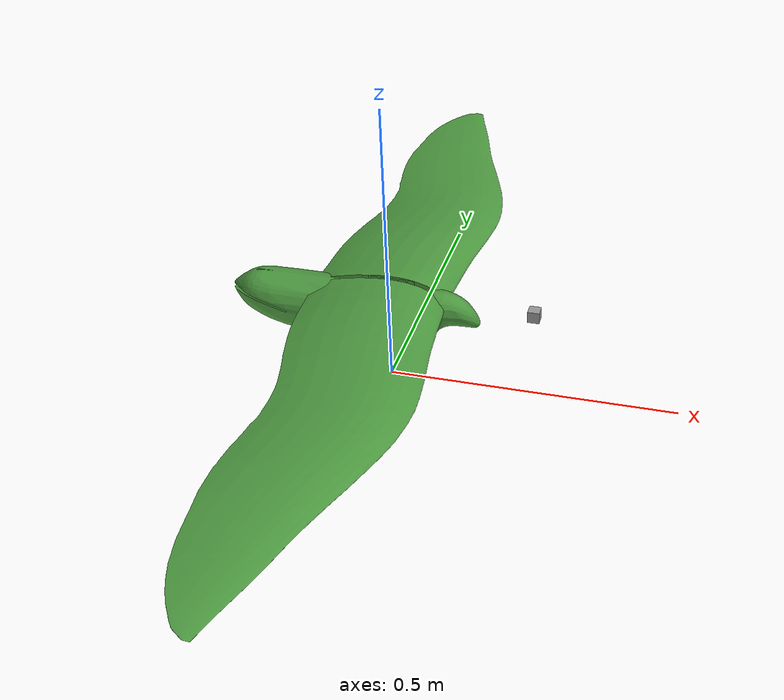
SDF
<?xml version="1.0"?>
<sdf version='1.5'>
  <model name='flapping_wing'>
    <pose>0 0 0.13 0 0 0</pose>
    <link name='base_link'>
      <pose>0 0 0 0 0 0</pose>
      <inertial>
        <pose>0 0 0 0 0 0</pose>
        <mass>0.28</mass>
        <inertia>
          <ixx>0.27563</ixx>
          <ixy>0</ixy>
          <ixz>0</ixz>
          <iyy>0.1458929</iyy>
          <iyz>0</iyz>
          <izz>0.1477</izz>
        </inertia>
      </inertial>
      <collision name='base_link_collision'>
        <geometry>
          <box>
            <size>0.5 1.25 0.156</size>
          </box>
        </geometry>
        <surface>
          <contact>
            <ode>
              <max_vel>15</max_vel>
              <min_depth>0.01</min_depth>
            </ode>
          </contact>
        </surface>
      </collision>
      <visual name='base_link_visual'>
        <geometry>
          <mesh>
            <scale>1 1 1</scale>
            <uri>model://flapping_wing/meshes/fuselage3.DAE</uri>
          </mesh>
        </geometry>
        <material>
          <script>
            <name>Gazebo/grass_diffusespecular</name>
            <uri>__default__</uri>
          </script>
        </material>
      </visual>
      <gravity>1</gravity>
      <velocity_decay/>
      <self_collide>0</self_collide>
    </link>

    <link name='flapping_wing/imu_link'>
      <pose>0 0 0 0 0 0</pose>
      <inertial>
        <pose>0 0 0 0 0 0</pose>
        <mass>0.015</mass>
        <inertia>
          <ixx>1e-05</ixx>
          <ixy>0</ixy>
          <ixz>0</ixz>
          <iyy>1e-05</iyy>
          <iyz>0</iyz>
          <izz>1e-05</izz>
        </inertia>
      </inertial>
    </link>
    <joint name='flapping_wing/imu_joint' type='revolute'>
      <child>flapping_wing/imu_link</child>
      <parent>base_link</parent>
      <axis>
        <xyz>1 0 0</xyz>
        <limit>
          <lower>0</lower>
          <upper>0</upper>
          <effort>0</effort>
          <velocity>0</velocity>
        </limit>
        <dynamics>
          <spring_reference>0</spring_reference>
          <spring_stiffness>0</spring_stiffness>
        </dynamics>
        <use_parent_model_frame>1</use_parent_model_frame>
      </axis>
    </joint>

    <link name='right_wing'>
      <pose>0.10 -0.005 0.03 0 0 0</pose>
      <inertial>
        <pose>0 0 0 0 0 0</pose>
        <mass>0.000001</mass>
        <inertia>
          <ixx>0.000001</ixx>
          <ixy>0.0</ixy>
          <iyy>0.000001</iyy>
          <ixz>0.0</ixz>
          <iyz>0.0</iyz>
          <izz>0.000001</izz>
        </inertia>
      </inertial>
      <visual name='right_wing_visual'>
        <geometry>
          <mesh>
            <scale>1 1 1</scale>
            <uri>model://flapping_wing/meshes/right_wing.DAE</uri>
          </mesh>
        </geometry>
        <material>
          <script>
            <name>Gazebo/grass_diffusespecular</name>
            <uri>__default__</uri>
          </script>
        </material>
      </visual>
    </link>
    <joint name='right_wing_joint' type='revolute'>
      <child>right_wing</child>
      <parent>base_link</parent>
      <pose>0.00 0 0.00 0 0 0</pose>
      <axis>
        <xyz>1 0 0</xyz>
        <limit>
          <lower>-0.3</lower>
          <upper>0.3</upper>
        </limit>
        <dynamics>
          <damping>1.000</damping>
        </dynamics>
      </axis>
      <physics>
        <ode>
          <implicit_spring_damper>1</implicit_spring_damper>
        </ode>
      </physics>
    </joint>
    <link name='left_wing'>
      <pose>0.10 0.005 0.03 0 0 0</pose>
      <inertial>
        <pose>0 0 0 0 0 0</pose>
        <mass>0.000001</mass>
        <inertia>
          <ixx>0.000001</ixx>
          <ixy>0.0</ixy>
          <iyy>0.000001</iyy>
          <ixz>0.0</ixz>
          <iyz>0.0</iyz>
          <izz>0.000001</izz>
        </inertia>
      </inertial>
      <visual name='left_wing_visual'>
        <geometry>
          <mesh>
            <scale>1 1 1</scale>
            <uri>model://flapping_wing/meshes/left_wing.DAE</uri>
          </mesh>
        </geometry>
        <material>
          <script>
            <name>Gazebo/grass_diffusespecular</name>
            <uri>__default__</uri>
          </script>
        </material>
      </visual>
    </link>
    <joint name='left_wing_joint' type='revolute'>
      <child>left_wing</child>
      <parent>base_link</parent>
      <pose>0.00 0 0.00 0 0 0</pose>
      <axis>
        <xyz>1 0 0</xyz>
        <limit>
          <lower>-0.3</lower>
          <upper>0.3</upper>
        </limit>
        <dynamics>
          <damping>1.000</damping>
        </dynamics>
      </axis>
      <physics>
        <ode>
          <implicit_spring_damper>1</implicit_spring_damper>
        </ode>
      </physics>
    </joint>

    <link name='virtual_left_tail'>
      <pose>-0.1 0.0 0.1 -0.05 0 0 0</pose>
      <inertial>
        <mass>0.00000001</mass>
        <inertia>
          <ixx>0.000001</ixx>
          <ixy>0.0</ixy>
          <iyy>0.000001</iyy>
          <ixz>0.0</ixz>
          <iyz>0.0</iyz>
          <izz>0.000001</izz>
        </inertia>
      </inertial>
    </link>
    <joint name='virtual_left_tail_joint' type='revolute'>
      <child>virtual_left_tail</child>
      <parent>base_link</parent>
      <pose>0.00 0 0.00 0 0 0</pose>
      <axis>
        <xyz>1 0 0</xyz>
        <limit>
          <lower>-0.3</lower>
          <upper>0.3</upper>
        </limit>
        <dynamics>
          <damping>1.000</damping>
        </dynamics>
      </axis>
      <physics>
        <ode>
          <implicit_spring_damper>1</implicit_spring_damper>
        </ode>
      </physics>
    </joint>
    <link name='virtual_right_tail'>
      <pose>-0.1 0.0 0.1 -0.05 0 0 0</pose>
      <inertial>
        <mass>0.00000001</mass>
        <inertia>
          <ixx>0.000001</ixx>
          <ixy>0.0</ixy>
          <iyy>0.000001</iyy>
          <ixz>0.0</ixz>
          <iyz>0.0</iyz>
          <izz>0.000001</izz>
        </inertia>
      </inertial>
    </link>
    <joint name='virtual_right_tail_joint' type='revolute'>
      <child>virtual_right_tail</child>
      <parent>base_link</parent>
      <pose>0.00 0 0.00 0 0 0</pose>
      <axis>
        <xyz>1 0 0</xyz>
        <limit>
          <lower>-0.3</lower>
          <upper>0.3</upper>
        </limit>
        <dynamics>
          <damping>1.000</damping>
        </dynamics>
      </axis>
      <physics>
        <ode>
          <implicit_spring_damper>1</implicit_spring_damper>
        </ode>
      </physics>
    </joint>

   <plugin name='flap' filename='libgazebo_flapping_control.so'>
      <robotNamespace></robotNamespace>
      <commandSubTopic>/gazebo/command/motor_speed</commandSubTopic>
      <motorNumber>4</motorNumber>
      <leftwing>left_wing_joint</leftwing>
      <rightwing>right_wing_joint</rightwing>
      <amplitude>0.3</amplitude>
      <wingspan>1.2</wingspan>
      <a0>0.05984281113</a0>
      <lcp>-0.05 0.1 0.0</lcp>
      <rcp>-0.05 -0.1 0.0</rcp>
      <twist>0.05</twist>
      <chord>0.225</chord>
      <link_name>base_link</link_name>
      <frequency>0</frequency>
      <forward>1 0 0</forward>
      <upward>0 0 1</upward>
      <rho>1.295</rho>
      <radial_symmetry>0</radial_symmetry>
   </plugin>

    <plugin name="virtual_lefttail" filename="libleft_liftdrag_plugin.so">
      <a0>-0.1</a0>
      <cla>4.752798721</cla>
      <cda>0.6417112299</cda>
      <cma>-1.8</cma>
      <alpha_stall>0.3391428111</alpha_stall>
      <cla_stall>-3.85</cla_stall>
      <cda_stall>-0.9233984055</cda_stall>
      <cma_stall>0</cma_stall>
      <cp>-0.35 0.1 0.0</cp>
      <area>0.02</area>
      <air_density>1.295</air_density>
      <forward>1 0 0</forward>
      <upward>0 0 1</upward>
      <link_name>base_link</link_name>
      <control_joint_name>
        virtual_left_tail_joint
      </control_joint_name>
      <control_joint_rad_to_cl>-3</control_joint_rad_to_cl>
    </plugin>

    <plugin name="virtual_righttail" filename="libleft_liftdrag_plugin.so">
      <a0>-0.1</a0>
      <cla>4.752798721</cla>
      <cda>0.6417112299</cda>
      <cma>-1.8</cma>
      <alpha_stall>0.3391428111</alpha_stall>
      <cla_stall>-3.85</cla_stall>
      <cda_stall>-0.9233984055</cda_stall>
      <cma_stall>0</cma_stall>
      <cp>-0.35 -0.1 0.0</cp>
      <area>0.02</area>
      <air_density>1.295</air_density>
      <forward>1 0 0</forward>
      <upward>0 0 1</upward>
      <link_name>base_link</link_name>
      <control_joint_name>
        virtual_right_tail_joint
      </control_joint_name>
      <control_joint_rad_to_cl>-3</control_joint_rad_to_cl>
    </plugin>

    <plugin name='gazebo_imu_plugin' filename='libgazebo_imu_plugin.so'>
      <robotNamespace></robotNamespace>
      <linkName>flapping_wing/imu_link</linkName>
      <imuTopic>/imu</imuTopic>
      <gyroscopeNoiseDensity>0.0003394</gyroscopeNoiseDensity>
      <gyroscopeRandomWalk>3.8785e-05</gyroscopeRandomWalk>
      <gyroscopeBiasCorrelationTime>1000.0</gyroscopeBiasCorrelationTime>
      <gyroscopeTurnOnBiasSigma>0.0087</gyroscopeTurnOnBiasSigma>
      <accelerometerNoiseDensity>0.004</accelerometerNoiseDensity>
      <accelerometerRandomWalk>0.006</accelerometerRandomWalk>
      <accelerometerBiasCorrelationTime>300.0</accelerometerBiasCorrelationTime>
      <accelerometerTurnOnBiasSigma>0.196</accelerometerTurnOnBiasSigma>
    </plugin>

    <plugin name="gps_plugin" filename="libgazebo_gps_plugin.so">
        <robotNamespace></robotNamespace>
        <gpsNoise>true</gpsNoise>
    </plugin>

    <plugin name='magnetometer_plugin' filename='libgazebo_magnetometer_plugin.so'>
      <robotNamespace/>
      <pubRate>20</pubRate>
      <noiseDensity>0.0004</noiseDensity>
      <randomWalk>6.4e-06</randomWalk>
      <biasCorrelationTime>600</biasCorrelationTime>
      <magTopic>/mag</magTopic>
    </plugin>

    <plugin name='barometer_plugin' filename='libgazebo_barometer_plugin.so'>
      <robotNamespace/>
      <pubRate>10</pubRate>
      <baroTopic>/baro</baroTopic>
    </plugin>

    <plugin name='mavlink_interface' filename='libgazebo_mavlink_interface.so'>
      <robotNamespace></robotNamespace>
      <baselink>base_link</baselink>
      <imuSubTopic>/imu</imuSubTopic>
      <gpsSubTopic>/gps</gpsSubTopic>
      <magSubTopic>/mag</magSubTopic>
      <baroSubTopic>/baro</baroSubTopic>
      <mavlink_addr>INADDR_ANY</mavlink_addr>
      <mavlink_udp_port>14560</mavlink_udp_port>
      <serialEnabled>false</serialEnabled>
      <serialDevice>/dev/ttyACM0</serialDevice>
      <baudRate>921600</baudRate>
      <qgc_addr>INADDR_ANY</qgc_addr>
      <qgc_udp_port>14550</qgc_udp_port>
      <sdk_addr>INADDR_ANY</sdk_addr>
      <sdk_udp_port>14540</sdk_udp_port>
      <hil_mode>false</hil_mode>
      <hil_state_level>false</hil_state_level>
      <enable_lockstep>true</enable_lockstep>
      <use_tcp>true</use_tcp>
      <motorSpeedCommandPubTopic>/gazebo/command/motor_speed</motorSpeedCommandPubTopic>
      <control_channels>
        <channel name="flapwing">
          <input_index>4</input_index>
          <input_offset>0</input_offset>
          <input_scaling>3500</input_scaling>
          <zero_position_disarmed>0</zero_position_disarmed>
          <zero_position_armed>0</zero_position_armed>
          <joint_control_type>position_kinematic</joint_control_type>
          <joint_name>tail_joint</joint_name>
        </channel>
        <channel name="left_tail">
          <input_index>2</input_index>
          <input_offset>0</input_offset>
          <input_scaling>1</input_scaling>
          <zero_position_disarmed>0</zero_position_disarmed>
          <zero_position_armed>0</zero_position_armed>
          <joint_control_type>position_kinematic</joint_control_type>
          <joint_name>virtual_left_tail_joint</joint_name>
        </channel>
        <channel name="right_tail">
          <input_index>3</input_index>
          <input_offset>0</input_offset>
          <input_scaling>-1</input_scaling>
          <zero_position_disarmed>0</zero_position_disarmed>
          <zero_position_armed>0</zero_position_armed>
          <joint_control_type>position_kinematic</joint_control_type>
          <joint_name>virtual_right_tail_joint</joint_name>
        </channel>
      </control_channels>
    </plugin>

    <include>
      <uri>model://mb1240-xl-ez4</uri>
      <pose>0.25 0 0.03 0 0 0</pose>
    </include>
    <joint name="mb1240-xl-ez4_joint" type="fixed">
      <child>mb1240-xl-ez4::link</child>
      <parent>base_link</parent>
      <axis>
        <xyz>0 0 1</xyz>
        <limit>
          <upper>0</upper>
          <lower>0</lower>
        </limit>
      </axis>
    </joint>

  </model>
</sdf>

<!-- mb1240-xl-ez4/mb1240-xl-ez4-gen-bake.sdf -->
<sdf version="1.5">

  <model name="mb1240-xl-ez4">

    <link name="link">

      <inertial>
        <mass>0.005</mass>
        <inertia>
          <ixx>3.33333333333e-07</ixx>
          <iyy>3.33333333333e-07</iyy>
          <izz>3.33333333333e-07</izz>
        </inertia>
      </inertial>

      <visual name="visual">
        <geometry>
          <box>
            <size>0.02 0.02 0.02</size>
          </box>
        </geometry>
        <material>
            <script>
              <uri>file://media/materials/scripts/gazebo.material</uri>
              <name>Gazebo/Grey</name>
            </script>
        </material>
      </visual>

      <collision name="collision">
        <geometry>
          <box>
            <size>0.02 0.02 0.02</size>
          </box>
        </geometry>
      </collision>

      <sensor name="sonar" type="sonar">
        <pose>0 0 0 0 -1.5707963259 0</pose>
        <sonar>
          <min>0</min>
          <max>2.00</max>
          <radius>0.3</radius>
        </sonar>
        <plugin name="SonarPlugin" filename="gazebo_sonar_plugin.cpp">
          <robotNamespace></robotNamespace>
          <topicName>/mb12</topicName>
        </plugin>
        <always_on>1</always_on>
        <update_rate>30</update_rate>
        <visualize>true</visualize>
      </sensor>

    </link>

  </model>

</sdf>

<!-- vim: set et ft=xml fenc=utf-8 ff=unix sts=0 sw=2 ts=2 : -->
